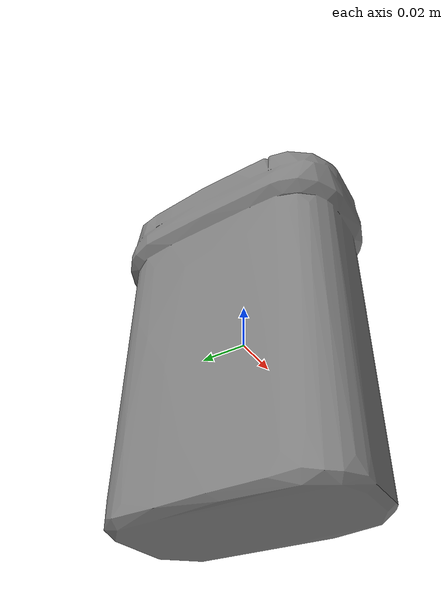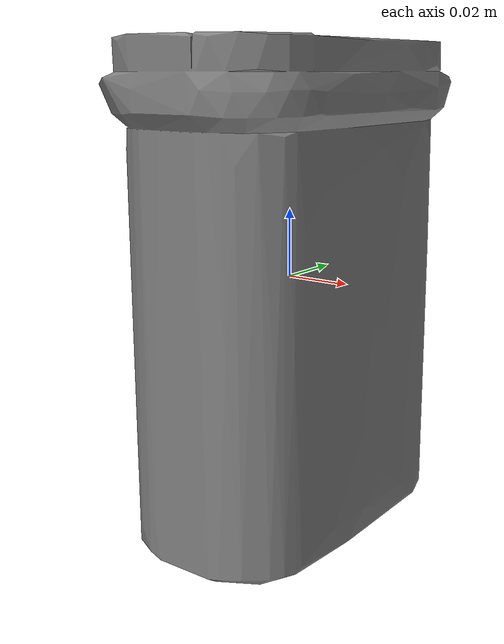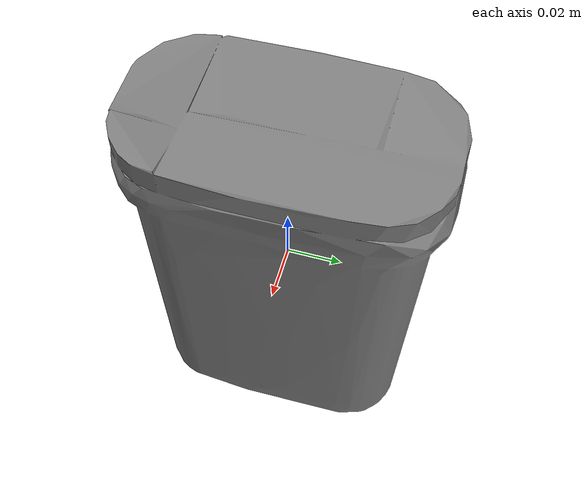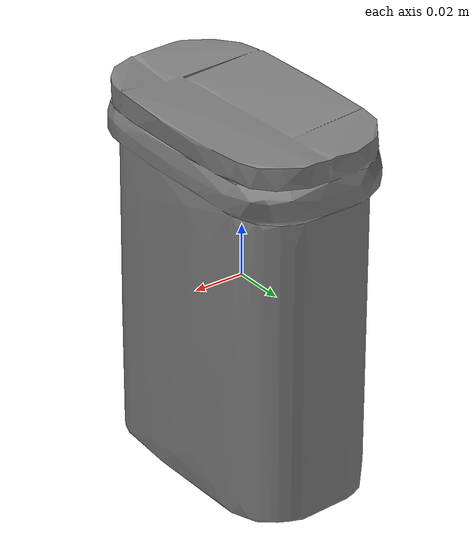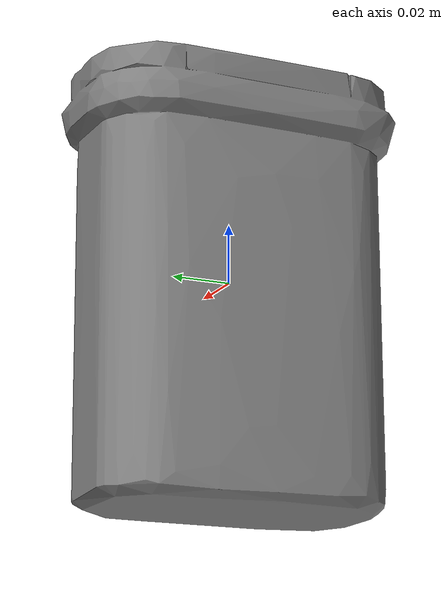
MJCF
<mujoco model="canister_Nestle_Nesquik_Chocolate_Powder_Flavored_Milk_Additive_109_Oz_Canister_M">
  <default>
    <default class="visual">
      <geom group="2" type="mesh" contype="0" conaffinity="0" />
    </default>
    <default class="collision">
      <geom group="3" type="mesh" />
    </default>
  </default>
  <asset>
    <mesh file="canister_Nestle_Nesquik_Chocolate_Powder_Flavored_Milk_Additive_109_Oz_Canister_M.stl" />
    <mesh file="canister_Nestle_Nesquik_Chocolate_Powder_Flavored_Milk_Additive_109_Oz_Canister_M_collision_0.stl" />
    <mesh file="canister_Nestle_Nesquik_Chocolate_Powder_Flavored_Milk_Additive_109_Oz_Canister_M_collision_1.stl" />
    <mesh file="canister_Nestle_Nesquik_Chocolate_Powder_Flavored_Milk_Additive_109_Oz_Canister_M_collision_2.stl" />
    <mesh file="canister_Nestle_Nesquik_Chocolate_Powder_Flavored_Milk_Additive_109_Oz_Canister_M_collision_3.stl" />
    <mesh file="canister_Nestle_Nesquik_Chocolate_Powder_Flavored_Milk_Additive_109_Oz_Canister_M_collision_4.stl" />
    <mesh file="canister_Nestle_Nesquik_Chocolate_Powder_Flavored_Milk_Additive_109_Oz_Canister_M_collision_5.stl" />
    <mesh file="canister_Nestle_Nesquik_Chocolate_Powder_Flavored_Milk_Additive_109_Oz_Canister_M_collision_6.stl" />
    <mesh file="canister_Nestle_Nesquik_Chocolate_Powder_Flavored_Milk_Additive_109_Oz_Canister_M_collision_7.stl" />
    <mesh file="canister_Nestle_Nesquik_Chocolate_Powder_Flavored_Milk_Additive_109_Oz_Canister_M_collision_8.stl" />
    <mesh file="canister_Nestle_Nesquik_Chocolate_Powder_Flavored_Milk_Additive_109_Oz_Canister_M_collision_9.stl" />
    <mesh file="canister_Nestle_Nesquik_Chocolate_Powder_Flavored_Milk_Additive_109_Oz_Canister_M_collision_10.stl" />
    <mesh file="canister_Nestle_Nesquik_Chocolate_Powder_Flavored_Milk_Additive_109_Oz_Canister_M_collision_11.stl" />
    <mesh file="canister_Nestle_Nesquik_Chocolate_Powder_Flavored_Milk_Additive_109_Oz_Canister_M_collision_12.stl" />
    <mesh file="canister_Nestle_Nesquik_Chocolate_Powder_Flavored_Milk_Additive_109_Oz_Canister_M_collision_13.stl" />
    <mesh file="canister_Nestle_Nesquik_Chocolate_Powder_Flavored_Milk_Additive_109_Oz_Canister_M_collision_14.stl" />
    <mesh file="canister_Nestle_Nesquik_Chocolate_Powder_Flavored_Milk_Additive_109_Oz_Canister_M_collision_15.stl" />
  </asset>
  <worldbody>
    <body name="canister_Nestle_Nesquik_Chocolate_Powder_Flavored_Milk_Additive_109_Oz_Canister_M">
      <geom mesh="canister_Nestle_Nesquik_Chocolate_Powder_Flavored_Milk_Additive_109_Oz_Canister_M" class="visual" />
      <geom mesh="canister_Nestle_Nesquik_Chocolate_Powder_Flavored_Milk_Additive_109_Oz_Canister_M_collision_0" class="collision" />
      <geom mesh="canister_Nestle_Nesquik_Chocolate_Powder_Flavored_Milk_Additive_109_Oz_Canister_M_collision_1" class="collision" />
      <geom mesh="canister_Nestle_Nesquik_Chocolate_Powder_Flavored_Milk_Additive_109_Oz_Canister_M_collision_2" class="collision" />
      <geom mesh="canister_Nestle_Nesquik_Chocolate_Powder_Flavored_Milk_Additive_109_Oz_Canister_M_collision_3" class="collision" />
      <geom mesh="canister_Nestle_Nesquik_Chocolate_Powder_Flavored_Milk_Additive_109_Oz_Canister_M_collision_4" class="collision" />
      <geom mesh="canister_Nestle_Nesquik_Chocolate_Powder_Flavored_Milk_Additive_109_Oz_Canister_M_collision_5" class="collision" />
      <geom mesh="canister_Nestle_Nesquik_Chocolate_Powder_Flavored_Milk_Additive_109_Oz_Canister_M_collision_6" class="collision" />
      <geom mesh="canister_Nestle_Nesquik_Chocolate_Powder_Flavored_Milk_Additive_109_Oz_Canister_M_collision_7" class="collision" />
      <geom mesh="canister_Nestle_Nesquik_Chocolate_Powder_Flavored_Milk_Additive_109_Oz_Canister_M_collision_8" class="collision" />
      <geom mesh="canister_Nestle_Nesquik_Chocolate_Powder_Flavored_Milk_Additive_109_Oz_Canister_M_collision_9" class="collision" />
      <geom mesh="canister_Nestle_Nesquik_Chocolate_Powder_Flavored_Milk_Additive_109_Oz_Canister_M_collision_10" class="collision" />
      <geom mesh="canister_Nestle_Nesquik_Chocolate_Powder_Flavored_Milk_Additive_109_Oz_Canister_M_collision_11" class="collision" />
      <geom mesh="canister_Nestle_Nesquik_Chocolate_Powder_Flavored_Milk_Additive_109_Oz_Canister_M_collision_12" class="collision" />
      <geom mesh="canister_Nestle_Nesquik_Chocolate_Powder_Flavored_Milk_Additive_109_Oz_Canister_M_collision_13" class="collision" />
      <geom mesh="canister_Nestle_Nesquik_Chocolate_Powder_Flavored_Milk_Additive_109_Oz_Canister_M_collision_14" class="collision" />
      <geom mesh="canister_Nestle_Nesquik_Chocolate_Powder_Flavored_Milk_Additive_109_Oz_Canister_M_collision_15" class="collision" />
    </body>
  </worldbody>
</mujoco>
